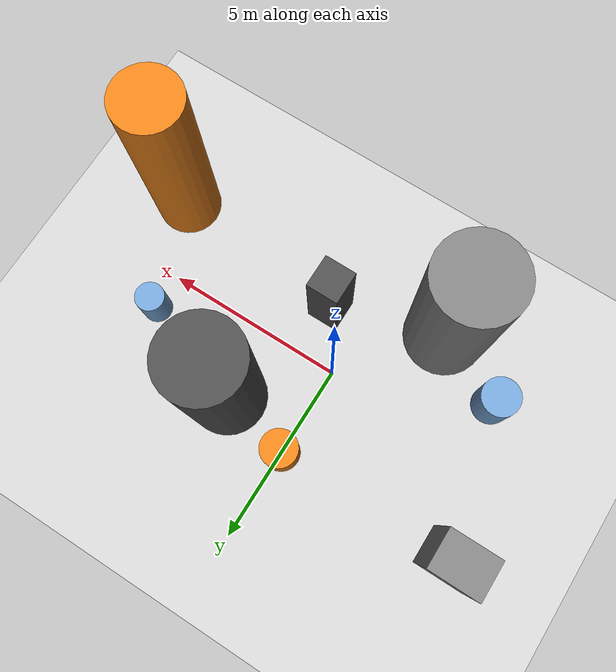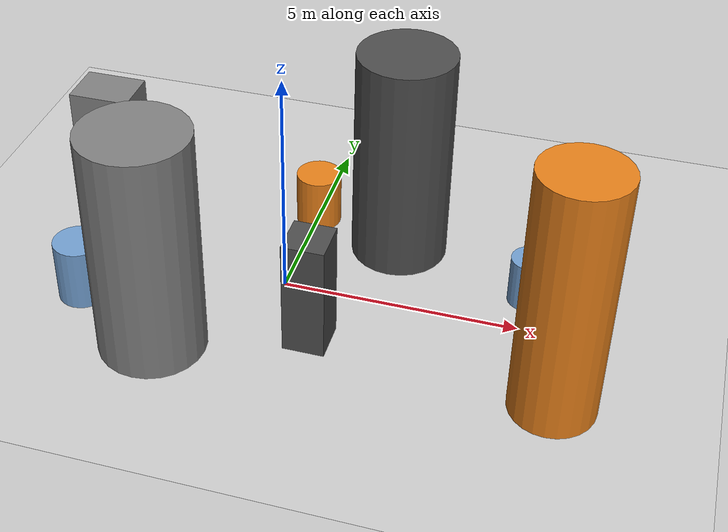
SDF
<?xml version='1.0'?>
<sdf version='1.6'>
  <world name='routeA_rl_v1__support_expansion__rl_val__mixed_3d_low_density_route__000054'>
    <!-- Sun light -->
    <light name='sun' type='directional'>
      <cast_shadows>1</cast_shadows>
      <pose>0 0 10 0 0 0</pose>
      <diffuse>0.8 0.8 0.8 1</diffuse>
      <specular>0.2 0.2 0.2 1</specular>
      <attenuation>
        <range>1000</range>
        <constant>0.9</constant>
        <linear>0.01</linear>
        <quadratic>0.001</quadratic>
      </attenuation>
      <direction>-0.5 0.1 -0.9</direction>
    </light>

    <!-- Ground plane -->
    <model name='ground_plane'>
      <static>1</static>
      <link name='link'>
        <collision name='collision'>
          <geometry>
            <plane>
              <normal>0 0 1</normal>
              <size>100 100</size>
            </plane>
          </geometry>
          <surface>
            <contact>
              <collide_bitmask>65535</collide_bitmask>
              <ode/>
            </contact>
            <friction>
              <ode>
                <mu>100</mu>
                <mu2>50</mu2>
              </ode>
              <torsional><ode/></torsional>
            </friction>
            <bounce/>
          </surface>
          <max_contacts>10</max_contacts>
        </collision>
        <visual name='visual'>
          <cast_shadows>0</cast_shadows>
          <geometry>
            <plane>
              <normal>0 0 1</normal>
              <size>100 100</size>
            </plane>
          </geometry>
          <material>
            <script>
              <uri>file://media/materials/scripts/gazebo.material</uri>
              <n>Gazebo/Grey</n>
            </script>
          </material>
        </visual>
      </link>
    </model>

    <!-- Environment -->
    <magnetic_field>6e-06 2.3e-05 -4.2e-05</magnetic_field>
    <atmosphere type='adiabatic'/>
    <physics name='default_physics' default='0' type='ode'>
      <gravity>0 0 -9.8</gravity>
      <max_step_size>0.004</max_step_size>
      <real_time_factor>1</real_time_factor>
      <real_time_update_rate>250</real_time_update_rate>
    </physics>
    <scene>
      <ambient>0.4 0.4 0.4 1</ambient>
      <background>0.7 0.7 0.7 1</background>
      <shadows>1</shadows>
    </scene>
    <wind/>
    <spherical_coordinates>
      <surface_model>EARTH_WGS84</surface_model>
      <latitude_deg>0</latitude_deg>
      <longitude_deg>0</longitude_deg>
      <elevation>0</elevation>
      <heading_deg>0</heading_deg>
    </spherical_coordinates>

    <!-- ============ OBSTACLES (8) ============ -->
    <model name='low_obs_0'>
      <static>1</static>
      <link name='link'>
        <visual name='visual'>
          <geometry>
            <cylinder>
              <radius>0.5188</radius>
              <length>1.3688</length>
            </cylinder>
          </geometry>
          <material>
            <script>
              <n>Gazebo/Blue</n>
              <uri>file://media/materials/scripts/gazebo.material</uri>
            </script>
            <ambient>0.447 0.624 0.812 1</ambient>
          </material>
        </visual>
        <collision name='collision'>
          <geometry>
            <cylinder>
              <radius>0.5188</radius>
              <length>1.3688</length>
            </cylinder>
          </geometry>
          <max_contacts>10</max_contacts>
          <surface>
            <contact><ode/></contact>
            <bounce/>
            <friction>
              <ode><mu>1</mu><mu2>1</mu2></ode>
              <torsional><ode/></torsional>
            </friction>
          </surface>
        </collision>
      </link>
      <pose>-4.0000 -1.5000 0.6844 0 0 0.0000</pose>
    </model>

    <model name='low_obs_1'>
      <static>1</static>
      <link name='link'>
        <visual name='visual'>
          <geometry>
            <cylinder>
              <radius>0.4981</radius>
              <length>1.2238</length>
            </cylinder>
          </geometry>
          <material>
            <script>
              <n>Gazebo/Orange</n>
              <uri>file://media/materials/scripts/gazebo.material</uri>
            </script>
            <ambient>0.9 0.5 0.1 1</ambient>
          </material>
        </visual>
        <collision name='collision'>
          <geometry>
            <cylinder>
              <radius>0.4981</radius>
              <length>1.2238</length>
            </cylinder>
          </geometry>
          <max_contacts>10</max_contacts>
          <surface>
            <contact><ode/></contact>
            <bounce/>
            <friction>
              <ode><mu>1</mu><mu2>1</mu2></ode>
              <torsional><ode/></torsional>
            </friction>
          </surface>
        </collision>
      </link>
      <pose>0.0000 2.5000 0.6119 0 0 0.0000</pose>
    </model>

    <model name='low_obs_2'>
      <static>1</static>
      <link name='link'>
        <visual name='visual'>
          <geometry>
            <cylinder>
              <radius>0.3978</radius>
              <length>1.0903</length>
            </cylinder>
          </geometry>
          <material>
            <script>
              <n>Gazebo/Blue</n>
              <uri>file://media/materials/scripts/gazebo.material</uri>
            </script>
            <ambient>0.447 0.624 0.812 1</ambient>
          </material>
        </visual>
        <collision name='collision'>
          <geometry>
            <cylinder>
              <radius>0.3978</radius>
              <length>1.0903</length>
            </cylinder>
          </geometry>
          <max_contacts>10</max_contacts>
          <surface>
            <contact><ode/></contact>
            <bounce/>
            <friction>
              <ode><mu>1</mu><mu2>1</mu2></ode>
              <torsional><ode/></torsional>
            </friction>
          </surface>
        </collision>
      </link>
      <pose>5.0000 1.0000 0.5451 0 0 0.0000</pose>
    </model>

    <model name='tall_obs_0'>
      <static>1</static>
      <link name='link'>
        <visual name='visual'>
          <geometry>
            <cylinder>
              <radius>1.1125</radius>
              <length>5.0091</length>
            </cylinder>
          </geometry>
          <material>
            <script>
              <n>Gazebo/Grey</n>
              <uri>file://media/materials/scripts/gazebo.material</uri>
            </script>
            <ambient>0.5 0.5 0.5 1</ambient>
          </material>
        </visual>
        <collision name='collision'>
          <geometry>
            <cylinder>
              <radius>1.1125</radius>
              <length>5.0091</length>
            </cylinder>
          </geometry>
          <max_contacts>10</max_contacts>
          <surface>
            <contact><ode/></contact>
            <bounce/>
            <friction>
              <ode><mu>1</mu><mu2>1</mu2></ode>
              <torsional><ode/></torsional>
            </friction>
          </surface>
        </collision>
      </link>
      <pose>-2.0000 -2.5000 2.5045 0 0 0.0000</pose>
    </model>

    <model name='tall_obs_1'>
      <static>1</static>
      <link name='link'>
        <visual name='visual'>
          <geometry>
            <cylinder>
              <radius>1.0457</radius>
              <length>4.8520</length>
            </cylinder>
          </geometry>
          <material>
            <script>
              <n>Gazebo/DarkGrey</n>
              <uri>file://media/materials/scripts/gazebo.material</uri>
            </script>
            <ambient>0.3 0.3 0.3 1</ambient>
          </material>
        </visual>
        <collision name='collision'>
          <geometry>
            <cylinder>
              <radius>1.0457</radius>
              <length>4.8520</length>
            </cylinder>
          </geometry>
          <max_contacts>10</max_contacts>
          <surface>
            <contact><ode/></contact>
            <bounce/>
            <friction>
              <ode><mu>1</mu><mu2>1</mu2></ode>
              <torsional><ode/></torsional>
            </friction>
          </surface>
        </collision>
      </link>
      <pose>2.0000 2.0000 2.4260 0 0 0.0000</pose>
    </model>

    <model name='tall_obs_2'>
      <static>1</static>
      <link name='link'>
        <visual name='visual'>
          <geometry>
            <cylinder>
              <radius>0.8745</radius>
              <length>5.4345</length>
            </cylinder>
          </geometry>
          <material>
            <script>
              <n>Gazebo/Orange</n>
              <uri>file://media/materials/scripts/gazebo.material</uri>
            </script>
            <ambient>0.9 0.5 0.1 1</ambient>
          </material>
        </visual>
        <collision name='collision'>
          <geometry>
            <cylinder>
              <radius>0.8745</radius>
              <length>5.4345</length>
            </cylinder>
          </geometry>
          <max_contacts>10</max_contacts>
          <surface>
            <contact><ode/></contact>
            <bounce/>
            <friction>
              <ode><mu>1</mu><mu2>1</mu2></ode>
              <torsional><ode/></torsional>
            </friction>
          </surface>
        </collision>
      </link>
      <pose>6.0000 -2.0000 2.7172 0 0 0.0000</pose>
    </model>

    <model name='med_obs_0'>
      <static>1</static>
      <link name='link'>
        <visual name='visual'>
          <geometry>
            <box>
              <size>1.3834 1.0708 2.5711</size>
            </box>
          </geometry>
          <material>
            <script>
              <n>Gazebo/Grey</n>
              <uri>file://media/materials/scripts/gazebo.material</uri>
            </script>
            <ambient>0.5 0.5 0.5 1</ambient>
          </material>
        </visual>
        <collision name='collision'>
          <geometry>
            <box>
              <size>1.3834 1.0708 2.5711</size>
            </box>
          </geometry>
          <max_contacts>10</max_contacts>
          <surface>
            <contact><ode/></contact>
            <bounce/>
            <friction>
              <ode><mu>1</mu><mu2>1</mu2></ode>
              <torsional><ode/></torsional>
            </friction>
          </surface>
        </collision>
      </link>
      <pose>-5.0000 2.5000 1.2856 0 0 0.0000</pose>
    </model>

    <model name='med_obs_1'>
      <static>1</static>
      <link name='link'>
        <visual name='visual'>
          <geometry>
            <box>
              <size>0.8724 0.8945 2.5661</size>
            </box>
          </geometry>
          <material>
            <script>
              <n>Gazebo/DarkGrey</n>
              <uri>file://media/materials/scripts/gazebo.material</uri>
            </script>
            <ambient>0.3 0.3 0.3 1</ambient>
          </material>
        </visual>
        <collision name='collision'>
          <geometry>
            <box>
              <size>0.8724 0.8945 2.5661</size>
            </box>
          </geometry>
          <max_contacts>10</max_contacts>
          <surface>
            <contact><ode/></contact>
            <bounce/>
            <friction>
              <ode><mu>1</mu><mu2>1</mu2></ode>
              <torsional><ode/></torsional>
            </friction>
          </surface>
        </collision>
      </link>
      <pose>1.0000 -1.5000 1.2830 0 0 0.0000</pose>
    </model>

    <!-- GUI camera -->
    <gui fullscreen='0'>
      <camera name='user_camera'>
        <pose>-15 0 18 0 0.85 0.15</pose>
        <view_controller>orbit</view_controller>
        <projection_type>perspective</projection_type>
      </camera>
    </gui>
  </world>
</sdf>
